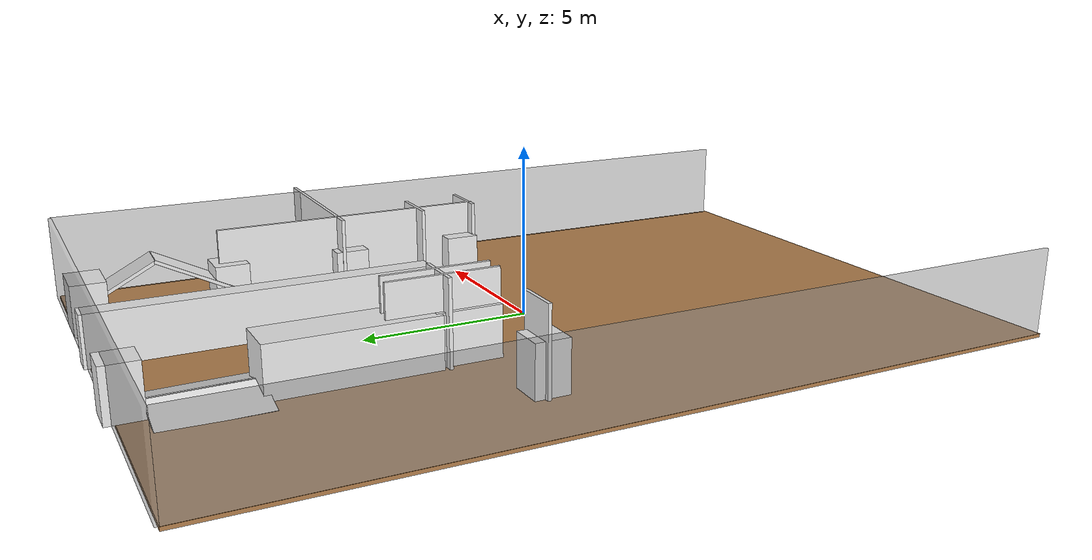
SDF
<sdf version="1.7">
 <world name="default">
  <model name="box_2">
   <pose>8.06174 -0.026302 1.25 0 -0 0</pose>
   <static>1</static>
   <link name="link">
    <collision name="collision"><geometry><box><size>0.1 24.1 2.5</size></box></geometry></collision>
    <visual name="visual">
     <geometry><box><size>0.1 24.1 2.5</size></box></geometry>
     <material>
      <script><name>Gazebo/GreyTransparent</name><uri>file://media/materials/scripts/gazebo.material</uri></script>
     </material>
    </visual>
   </link>
  </model>
  <model name="box_3">
   <pose>-0.05 12.05 1.25 0 -0 0</pose>
   <static>1</static>
   <link name="link">
    <collision name="collision"><geometry><box><size>16.1 0.1 2.5</size></box></geometry></collision>
    <visual name="visual">
     <geometry><box><size>16.1 0.1 2.5</size></box></geometry>
     <material>
      <script><name>Gazebo/GreyTransparent</name><uri>file://media/materials/scripts/gazebo.material</uri></script>
     </material>
    </visual>
   </link>
  </model>
  <model name="box_4">
   <pose>-8.05 -0.05 1.25 0 -0 0</pose>
   <static>1</static>
   <link name="link">
    <collision name="collision"><geometry><box><size>0.1 24.1 2.5</size></box></geometry></collision>
    <visual name="visual">
     <geometry><box><size>0.1 24.1 2.5</size></box></geometry>
     <material>
      <script><name>Gazebo/GreyTransparent</name><uri>file://media/materials/scripts/gazebo.material</uri></script>
     </material>
    </visual>
   </link>
  </model>
  <model name="box_5">
   <pose>-0.014534 -0.091603 -0.05 0 -0 0</pose>
   <static>1</static>
   <link name="link">
    <collision name="collision"><geometry><box><size>16.2 24.2 0.1</size></box></geometry></collision>
    <visual name="visual">
     <geometry><box><size>16.2 24.2 0.1</size></box></geometry>
     <material>
      <script><name>Gazebo/WoodFloor</name><uri>file://media/materials/scripts/gazebo.material</uri></script>
     </material>
    </visual>
   </link>
  </model>
  <model name="box_8_clone_clone_4_clone_2">
   <pose>-5.45875 2.39293 1.25 0 -0 0</pose>
   <static>1</static>
   <link name="link">
    <collision name="collision"><geometry><box><size>1.26584 0.1 2.5</size></box></geometry></collision>
    <visual name="visual">
     <geometry><box><size>1.26584 0.1 2.5</size></box></geometry>
     <material>
      <script><name>Gazebo/White</name><uri>file://media/materials/scripts/gazebo.material</uri></script>
     </material>
    </visual>
   </link>
  </model>
  <model name="box_9_clone_clone_7_clone">
   <pose>-5.47252 2.23106 0.75 0 -0 0</pose>
   <static>1</static>
   <link name="link">
    <collision name="collision"><geometry><box><size>1 1 1.5</size></box></geometry></collision>
    <visual name="visual">
     <geometry><box><size>1 1 1.5</size></box></geometry>
     <material>
      <script><name>Gazebo/White</name><uri>file://media/materials/scripts/gazebo.material</uri></script>
     </material>
    </visual>
   </link>
  </model>
  <model name="box_9_clone_clone_5_clone_2_clone_0">
   <pose>4.37795 7.57531 0.75 0 -0 0</pose>
   <static>1</static>
   <link name="link">
    <collision name="collision"><geometry><box><size>1.02973 1 1.5</size></box></geometry></collision>
    <visual name="visual">
     <geometry><box><size>1.02973 1 1.5</size></box></geometry>
     <material>
      <script><name>Gazebo/White</name><uri>file://media/materials/scripts/gazebo.material</uri></script>
     </material>
    </visual>
   </link>
  </model>
  <model name="box_6_clone_clone_4_clone">
   <pose>4.48051 10.7847 1.29712 0 -1.07805 1.53996</pose>
   <static>1</static>
   <link name="link">
    <collision name="collision"><geometry><box><size>0.1 1.08009 2.5</size></box></geometry></collision>
    <visual name="visual">
     <geometry><box><size>0.1 1.08009 2.5</size></box></geometry>
     <material>
      <script><name>Gazebo/White</name><uri>file://media/materials/scripts/gazebo.material</uri></script>
     </material>
    </visual>
   </link>
  </model>
  <model name="box_8_clone_clone_3_clone">
   <pose>6.25131 4.20674 1.25 0 -0 0</pose>
   <static>1</static>
   <link name="link">
    <collision name="collision"><geometry><box><size>5.04273 0.1 2.5</size></box></geometry></collision>
    <visual name="visual">
     <geometry><box><size>5.04273 0.1 2.5</size></box></geometry>
     <material>
      <script><name>Gazebo/White</name><uri>file://media/materials/scripts/gazebo.material</uri></script>
     </material>
    </visual>
   </link>
  </model>
  <model name="box_9_clone_clone_7_clone_0">
   <pose>1.52592 7.29543 0.75 0 -0 0</pose>
   <static>1</static>
   <link name="link">
    <collision name="collision"><geometry><box><size>0.641484 9.79262 1.5</size></box></geometry></collision>
    <visual name="visual">
     <geometry><box><size>0.641484 9.79262 1.5</size></box></geometry>
     <material>
      <script><name>Gazebo/White</name><uri>file://media/materials/scripts/gazebo.material</uri></script>
     </material>
    </visual>
   </link>
  </model>
  <model name="box_8_clone_clone_3_clone_clone">
   <pose>-2.97784 9.85654 0.139081 -1.5809 -0.264744 0.004288</pose>
   <static>1</static>
   <link name="link">
    <collision name="collision"><geometry><box><size>1.45164 0.1 2.8877</size></box></geometry></collision>
    <visual name="visual">
     <geometry><box><size>1.45164 0.1 2.8877</size></box></geometry>
     <material>
      <script><name>Gazebo/White</name><uri>file://media/materials/scripts/gazebo.material</uri></script>
     </material>
    </visual>
   </link>
  </model>
  <model name="box_9_clone_clone_9_clone">
   <pose>-2.30467 11.7929 0.75 0 -0 0</pose>
   <static>1</static>
   <link name="link">
    <collision name="collision"><geometry><box><size>1 1 1.5</size></box></geometry></collision>
    <visual name="visual">
     <geometry><box><size>1 1 1.5</size></box></geometry>
     <material>
      <script><name>Gazebo/White</name><uri>file://media/materials/scripts/gazebo.material</uri></script>
     </material>
    </visual>
   </link>
  </model>
  <model name="box_6_clone_clone_3_clone_clone_clone">
   <pose>-2.72273 3.70807 1.25 0 -0 0</pose>
   <static>1</static>
   <link name="link">
    <collision name="collision"><geometry><box><size>0.1 3.23033 2.5</size></box></geometry></collision>
    <visual name="visual">
     <geometry><box><size>0.1 3.23033 2.5</size></box></geometry>
     <material>
      <script><name>Gazebo/White</name><uri>file://media/materials/scripts/gazebo.material</uri></script>
     </material>
    </visual>
   </link>
  </model>
  <model name="box_6_clone_clone_3_clone_clone_clone_clone">
   <pose>4.27871 3.81707 1.25 0 -0 0</pose>
   <static>1</static>
   <link name="link">
    <collision name="collision"><geometry><box><size>0.1 8.11445 2.5</size></box></geometry></collision>
    <visual name="visual">
     <geometry><box><size>0.1 8.11445 2.5</size></box></geometry>
     <material>
      <script><name>Gazebo/White</name><uri>file://media/materials/scripts/gazebo.material</uri></script>
     </material>
    </visual>
   </link>
  </model>
  <model name="box_8_clone_clone">
   <pose>4.67136 -0.169302 1.25 0 -0 0</pose>
   <static>1</static>
   <link name="link">
    <collision name="collision"><geometry><box><size>1.5 0.1 2.5</size></box></geometry></collision>
    <visual name="visual">
     <geometry><box><size>1.5 0.1 2.5</size></box></geometry>
     <material>
      <script><name>Gazebo/White</name><uri>file://media/materials/scripts/gazebo.material</uri></script>
     </material>
    </visual>
   </link>
  </model>
  <model name="box_9_clone_clone_7_clone_clone_0">
   <pose>-2.40805 3.03977 0.75 0 -0 0</pose>
   <static>1</static>
   <link name="link">
    <collision name="collision"><geometry><box><size>1 1.88415 1.5</size></box></geometry></collision>
    <visual name="visual">
     <geometry><box><size>1 1.88415 1.5</size></box></geometry>
     <material>
      <script><name>Gazebo/White</name><uri>file://media/materials/scripts/gazebo.material</uri></script>
     </material>
    </visual>
   </link>
  </model>
  <model name="box_9_clone_clone_5_clone_2_clone_clone_clone_0_clone">
   <pose>4.16141 3.94247 0.75 0 -0 0</pose>
   <static>1</static>
   <link name="link">
    <collision name="collision"><geometry><box><size>0.839425 1 1.5</size></box></geometry></collision>
    <visual name="visual">
     <geometry><box><size>0.839425 1 1.5</size></box></geometry>
     <material>
      <script><name>Gazebo/White</name><uri>file://media/materials/scripts/gazebo.material</uri></script>
     </material>
    </visual>
   </link>
  </model>
  <model name="box_9_clone_clone_5_clone_2_clone_clone_clone_0_clone_clone">
   <pose>4.22761 0.292409 0.75 0 -0 0</pose>
   <static>1</static>
   <link name="link">
    <collision name="collision"><geometry><box><size>1 1 1.5</size></box></geometry></collision>
    <visual name="visual">
     <geometry><box><size>1 1 1.5</size></box></geometry>
     <material>
      <script><name>Gazebo/White</name><uri>file://media/materials/scripts/gazebo.material</uri></script>
     </material>
    </visual>
   </link>
  </model>
  <model name="box_6_clone_clone_3_clone_clone_clone_clone_1">
   <pose>-2.14756 3.67113 1.25 0 -0 0.001144</pose>
   <static>1</static>
   <link name="link">
    <collision name="collision"><geometry><box><size>0.1 3.12165 2.5</size></box></geometry></collision>
    <visual name="visual">
     <geometry><box><size>0.1 3.12165 2.5</size></box></geometry>
     <material>
      <script><name>Gazebo/White</name><uri>file://media/materials/scripts/gazebo.material</uri></script>
     </material>
    </visual>
   </link>
  </model>
  <model name="box_9_clone_clone_8_clone_0_clone">
   <pose>-2.39536 6.21978 0.75 0 -0 0</pose>
   <static>1</static>
   <link name="link">
    <collision name="collision"><geometry><box><size>1.34488 4.75321 1.5</size></box></geometry></collision>
    <visual name="visual">
     <geometry><box><size>1.34488 4.75321 1.5</size></box></geometry>
     <material>
      <script><name>Gazebo/White</name><uri>file://media/materials/scripts/gazebo.material</uri></script>
     </material>
    </visual>
   </link>
  </model>
  <model name="box_6_clone_clone_4_clone_clone">
   <pose>4.39679 8.61795 1.34155 0 -1.11157 -1.60232</pose>
   <static>1</static>
   <link name="link">
    <collision name="collision"><geometry><box><size>0.1 1.10854 2.5</size></box></geometry></collision>
    <visual name="visual">
     <geometry><box><size>0.1 1.10854 2.5</size></box></geometry>
     <material>
      <script><name>Gazebo/White</name><uri>file://media/materials/scripts/gazebo.material</uri></script>
     </material>
    </visual>
   </link>
  </model>
  <model name="box_8_clone_clone_4_clone_2_clone">
   <pose>-2.37022 3.68087 1.25 0 -0 0</pose>
   <static>1</static>
   <link name="link">
    <collision name="collision"><geometry><box><size>1.5 0.1 2.5</size></box></geometry></collision>
    <visual name="visual">
     <geometry><box><size>1.5 0.1 2.5</size></box></geometry>
     <material>
      <script><name>Gazebo/White</name><uri>file://media/materials/scripts/gazebo.material</uri></script>
     </material>
    </visual>
   </link>
  </model>
  <model name="box_8_clone_clone_4_clone_2_clone_clone">
   <pose>4.50184 1.59903 1.25 0 -0 0</pose>
   <static>1</static>
   <link name="link">
    <collision name="collision"><geometry><box><size>1.5 0.1 2.5</size></box></geometry></collision>
    <visual name="visual">
     <geometry><box><size>1.5 0.1 2.5</size></box></geometry>
     <material>
      <script><name>Gazebo/White</name><uri>file://media/materials/scripts/gazebo.material</uri></script>
     </material>
    </visual>
   </link>
  </model>
  <model name="box_9_clone_clone_5_clone_2_clone_0_clone">
   <pose>4.56593 11.5975 0.75 0 -0 0</pose>
   <static>1</static>
   <link name="link">
    <collision name="collision"><geometry><box><size>1.40826 1 1.5</size></box></geometry></collision>
    <visual name="visual">
     <geometry><box><size>1.40826 1 1.5</size></box></geometry>
     <material>
      <script><name>Gazebo/White</name><uri>file://media/materials/scripts/gazebo.material</uri></script>
     </material>
    </visual>
   </link>
  </model>
  <model name="box_8_clone_clone_3_clone_clone_clone_0">
   <pose>-1.65836 9.81521 0.139081 -1.5809 0.264465 -0.000997</pose>
   <static>1</static>
   <link name="link">
    <collision name="collision"><geometry><box><size>1.45164 0.1 2.9207</size></box></geometry></collision>
    <visual name="visual">
     <geometry><box><size>1.45164 0.1 2.9207</size></box></geometry>
     <material>
      <script><name>Gazebo/White</name><uri>file://media/materials/scripts/gazebo.material</uri></script>
     </material>
    </visual>
   </link>
  </model>
 </world>
</sdf>
